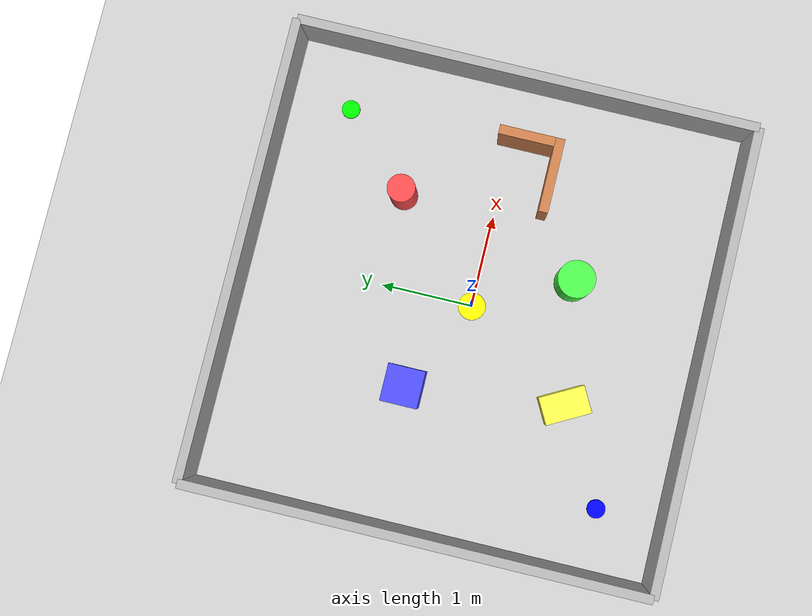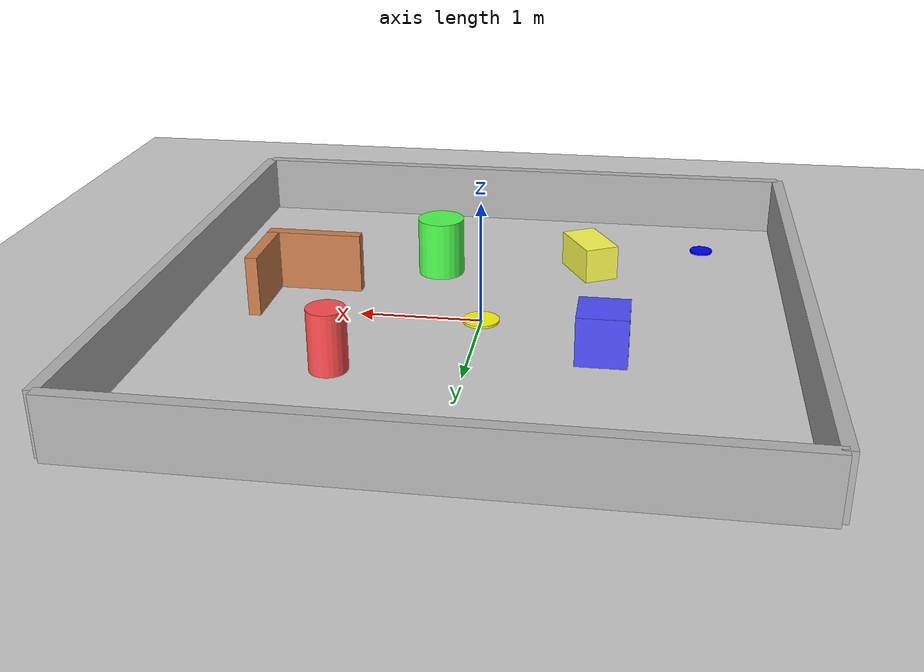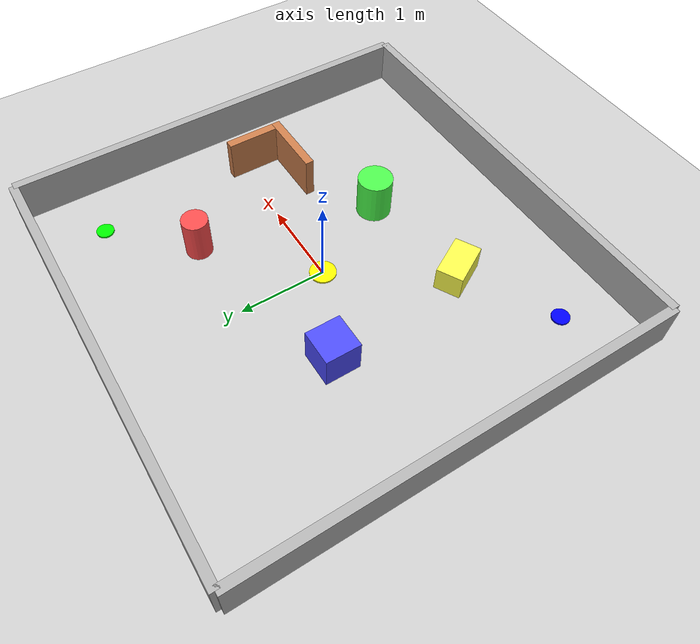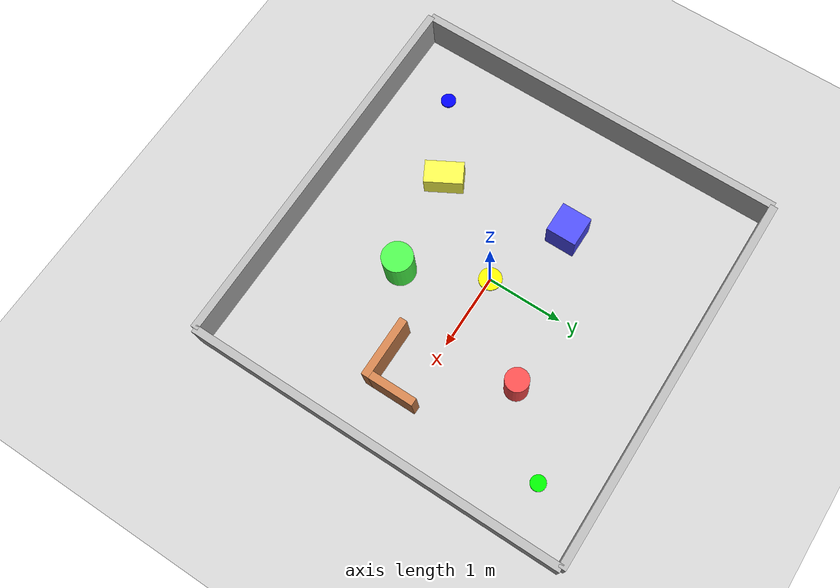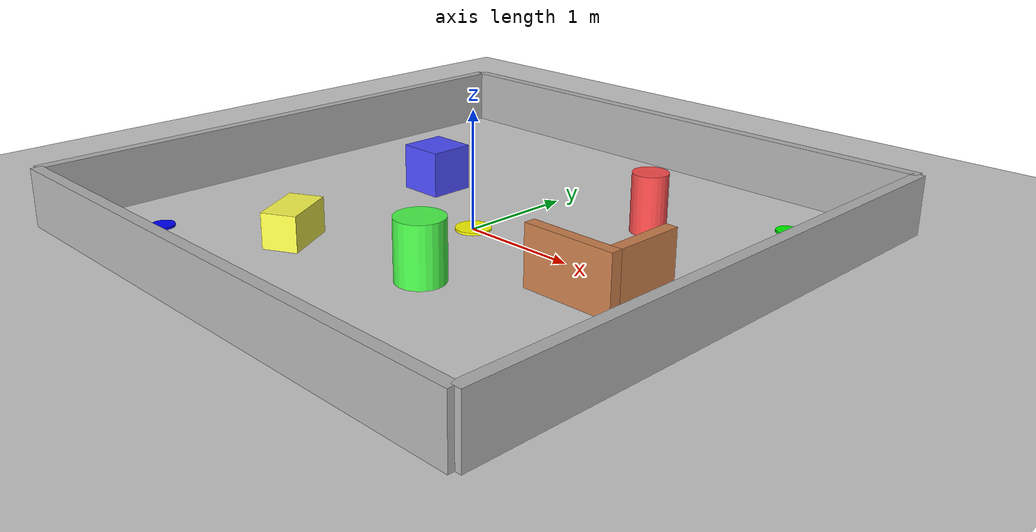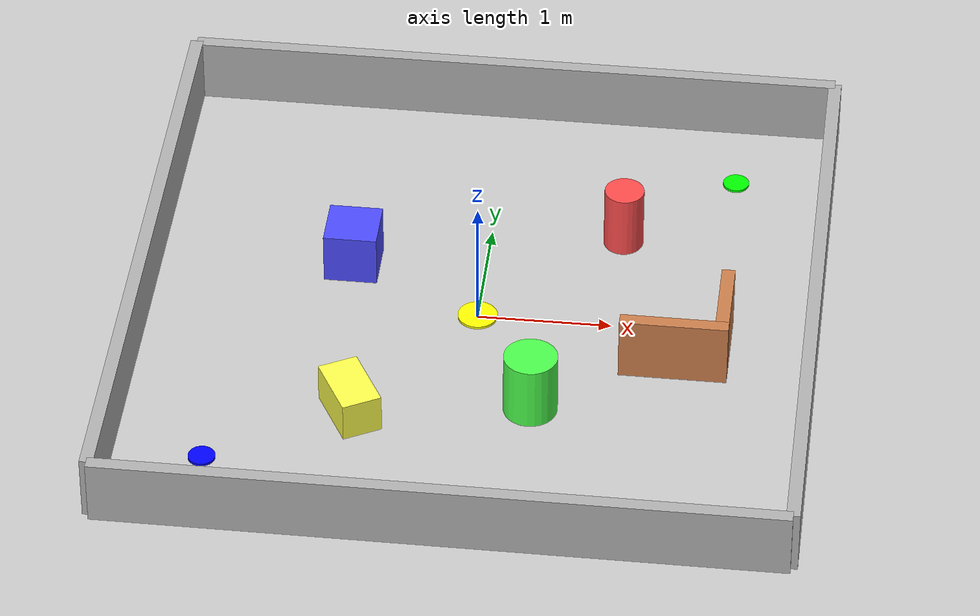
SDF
<?xml version="1.0" ?>
<!--
  简单障碍物测试世界 / Simple Obstacles Test World
  用于导航功能测试 / For navigation function testing
-->
<sdf version="1.6">
  <world name="simple_obstacles">

    <!-- 物理引擎配置 / Physics engine configuration -->
    <physics type="ode">
      <real_time_update_rate>1000.0</real_time_update_rate>
      <max_step_size>0.001</max_step_size>
      <real_time_factor>1</real_time_factor>
    </physics>

    <!-- 光照 / Lighting -->
    <include>
      <uri>model://sun</uri>
    </include>

    <!-- 地面 / Ground plane -->
    <include>
      <uri>model://ground_plane</uri>
    </include>

    <!-- 围墙 / Walls (5m x 5m 区域 / area) -->

    <!-- 北墙 / North wall -->
    <model name="wall_north">
      <static>true</static>
      <pose>0 2.5 0.25 0 0 0</pose>
      <link name="link">
        <collision name="collision">
          <geometry>
            <box><size>5.0 0.1 0.5</size></box>
          </geometry>
        </collision>
        <visual name="visual">
          <geometry>
            <box><size>5.0 0.1 0.5</size></box>
          </geometry>
          <material>
            <ambient>0.5 0.5 0.5 1</ambient>
            <diffuse>0.7 0.7 0.7 1</diffuse>
          </material>
        </visual>
      </link>
    </model>

    <!-- 南墙 / South wall -->
    <model name="wall_south">
      <static>true</static>
      <pose>0 -2.5 0.25 0 0 0</pose>
      <link name="link">
        <collision name="collision">
          <geometry>
            <box><size>5.0 0.1 0.5</size></box>
          </geometry>
        </collision>
        <visual name="visual">
          <geometry>
            <box><size>5.0 0.1 0.5</size></box>
          </geometry>
          <material>
            <ambient>0.5 0.5 0.5 1</ambient>
            <diffuse>0.7 0.7 0.7 1</diffuse>
          </material>
        </visual>
      </link>
    </model>

    <!-- 东墙 / East wall -->
    <model name="wall_east">
      <static>true</static>
      <pose>2.5 0 0.25 0 0 1.5708</pose>
      <link name="link">
        <collision name="collision">
          <geometry>
            <box><size>5.0 0.1 0.5</size></box>
          </geometry>
        </collision>
        <visual name="visual">
          <geometry>
            <box><size>5.0 0.1 0.5</size></box>
          </geometry>
          <material>
            <ambient>0.5 0.5 0.5 1</ambient>
            <diffuse>0.7 0.7 0.7 1</diffuse>
          </material>
        </visual>
      </link>
    </model>

    <!-- 西墙 / West wall -->
    <model name="wall_west">
      <static>true</static>
      <pose>-2.5 0 0.25 0 0 1.5708</pose>
      <link name="link">
        <collision name="collision">
          <geometry>
            <box><size>5.0 0.1 0.5</size></box>
          </geometry>
        </collision>
        <visual name="visual">
          <geometry>
            <box><size>5.0 0.1 0.5</size></box>
          </geometry>
          <material>
            <ambient>0.5 0.5 0.5 1</ambient>
            <diffuse>0.7 0.7 0.7 1</diffuse>
          </material>
        </visual>
      </link>
    </model>

    <!-- 障碍物 / Obstacles -->

    <!-- 障碍物1: 红色圆柱 / Obstacle 1: Red cylinder -->
    <model name="obstacle_cylinder_1">
      <static>true</static>
      <pose>1.0 1.0 0.25 0 0 0</pose>
      <link name="link">
        <collision name="collision">
          <geometry>
            <cylinder>
              <radius>0.15</radius>
              <length>0.5</length>
            </cylinder>
          </geometry>
        </collision>
        <visual name="visual">
          <geometry>
            <cylinder>
              <radius>0.15</radius>
              <length>0.5</length>
            </cylinder>
          </geometry>
          <material>
            <ambient>0.8 0.2 0.2 1</ambient>
            <diffuse>1.0 0.3 0.3 1</diffuse>
          </material>
        </visual>
      </link>
    </model>

    <!-- 障碍物2: 蓝色方块 / Obstacle 2: Blue box -->
    <model name="obstacle_box_1">
      <static>true</static>
      <pose>-1.0 0.5 0.2 0 0 0</pose>
      <link name="link">
        <collision name="collision">
          <geometry>
            <box><size>0.4 0.4 0.4</size></box>
          </geometry>
        </collision>
        <visual name="visual">
          <geometry>
            <box><size>0.4 0.4 0.4</size></box>
          </geometry>
          <material>
            <ambient>0.2 0.2 0.8 1</ambient>
            <diffuse>0.3 0.3 1.0 1</diffuse>
          </material>
        </visual>
      </link>
    </model>

    <!-- 障碍物3: 绿色圆柱 / Obstacle 3: Green cylinder -->
    <model name="obstacle_cylinder_2">
      <static>true</static>
      <pose>0.5 -1.0 0.25 0 0 0</pose>
      <link name="link">
        <collision name="collision">
          <geometry>
            <cylinder>
              <radius>0.2</radius>
              <length>0.5</length>
            </cylinder>
          </geometry>
        </collision>
        <visual name="visual">
          <geometry>
            <cylinder>
              <radius>0.2</radius>
              <length>0.5</length>
            </cylinder>
          </geometry>
          <material>
            <ambient>0.2 0.8 0.2 1</ambient>
            <diffuse>0.3 1.0 0.3 1</diffuse>
          </material>
        </visual>
      </link>
    </model>

    <!-- 障碍物4: 黄色方块 / Obstacle 4: Yellow box -->
    <model name="obstacle_box_2">
      <static>true</static>
      <pose>-0.8 -1.2 0.15 0 0 0.5</pose>
      <link name="link">
        <collision name="collision">
          <geometry>
            <box><size>0.3 0.5 0.3</size></box>
          </geometry>
        </collision>
        <visual name="visual">
          <geometry>
            <box><size>0.3 0.5 0.3</size></box>
          </geometry>
          <material>
            <ambient>0.8 0.8 0.2 1</ambient>
            <diffuse>1.0 1.0 0.3 1</diffuse>
          </material>
        </visual>
      </link>
    </model>

    <!-- 障碍物5: L形墙 / Obstacle 5: L-shaped wall -->
    <model name="obstacle_L_wall">
      <static>true</static>
      <pose>1.5 -0.5 0.25 0 0 0</pose>
      <link name="link">
        <!-- L形水平部分 / L-shape horizontal part -->
        <collision name="collision_h">
          <pose>0 0 0 0 0 0</pose>
          <geometry>
            <box><size>0.8 0.1 0.5</size></box>
          </geometry>
        </collision>
        <visual name="visual_h">
          <pose>0 0 0 0 0 0</pose>
          <geometry>
            <box><size>0.8 0.1 0.5</size></box>
          </geometry>
          <material>
            <ambient>0.6 0.4 0.2 1</ambient>
            <diffuse>0.8 0.5 0.3 1</diffuse>
          </material>
        </visual>
        <!-- L形垂直部分 / L-shape vertical part -->
        <collision name="collision_v">
          <pose>0.35 0.35 0 0 0 0</pose>
          <geometry>
            <box><size>0.1 0.6 0.5</size></box>
          </geometry>
        </collision>
        <visual name="visual_v">
          <pose>0.35 0.35 0 0 0 0</pose>
          <geometry>
            <box><size>0.1 0.6 0.5</size></box>
          </geometry>
          <material>
            <ambient>0.6 0.4 0.2 1</ambient>
            <diffuse>0.8 0.5 0.3 1</diffuse>
          </material>
        </visual>
      </link>
    </model>

    <!-- 导航目标标记 / Navigation goal markers -->

    <!-- 目标点A标记 / Goal point A marker -->
    <model name="goal_marker_A">
      <static>true</static>
      <pose>1.8 1.8 0.01 0 0 0</pose>
      <link name="link">
        <visual name="visual">
          <geometry>
            <cylinder>
              <radius>0.1</radius>
              <length>0.02</length>
            </cylinder>
          </geometry>
          <material>
            <ambient>0 1 0 1</ambient>
            <diffuse>0 1 0 1</diffuse>
          </material>
        </visual>
      </link>
    </model>

    <!-- 目标点B标记 / Goal point B marker -->
    <model name="goal_marker_B">
      <static>true</static>
      <pose>-1.8 -1.8 0.01 0 0 0</pose>
      <link name="link">
        <visual name="visual">
          <geometry>
            <cylinder>
              <radius>0.1</radius>
              <length>0.02</length>
            </cylinder>
          </geometry>
          <material>
            <ambient>0 0 1 1</ambient>
            <diffuse>0 0 1 1</diffuse>
          </material>
        </visual>
      </link>
    </model>

    <!-- 起始点标记 / Start point marker -->
    <model name="start_marker">
      <static>true</static>
      <pose>0 0 0.01 0 0 0</pose>
      <link name="link">
        <visual name="visual">
          <geometry>
            <cylinder>
              <radius>0.15</radius>
              <length>0.02</length>
            </cylinder>
          </geometry>
          <material>
            <ambient>1 1 0 1</ambient>
            <diffuse>1 1 0 1</diffuse>
          </material>
        </visual>
      </link>
    </model>

  </world>
</sdf>
